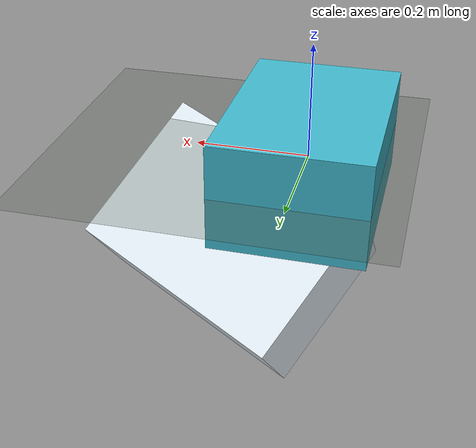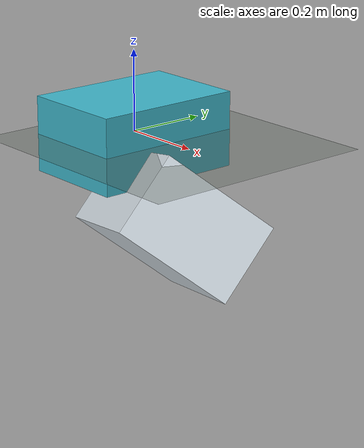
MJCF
<mujoco model="criatura">
  <compiler angle="degree" autolimits="true"/>
  <option timestep="0.002083" gravity="0 0 -9.81" integrator="implicitfast"/>
  <default>
    <geom type="box" density="300.0" rgba="0.85 0.89 0.92 1"/>
    <joint type="hinge"/>
    <motor ctrlrange="-1 1"/>
  </default>
  <worldbody>
    <geom name="suelo" type="plane" size="0 0 1" friction="1 0.005 0.0001" rgba="0.3 0.35 0.3 1"/>
    <body name="p0_n0" pos="0.00000 0.00000 0.00000" quat="1.000000 0.000000 0.000000 0.000000">
      <freejoint name="raiz"/>
      <geom name="g_p0_n0" size="0.13232 0.18854 0.09312" rgba="0.25 0.72 0.8 1"/>
      <body name="p1_n1" pos="0.13342 0.00039 -0.19666" quat="0.276211 0.802337 0.485281 -0.210869">
        <joint name="p1_n1_j0" axis="0.0000 1.0000 0.0000" pos="-0.17073 0 0" range="-68.55 68.55" damping="1.0534"/>
        <joint name="p1_n1_j1" axis="0.0000 0.0000 1.0000" pos="-0.17073 0 0" range="-68.55 68.55" damping="1.0534"/>
        <geom name="g_p1_n1" size="0.15073 0.20878 0.10312"/>
      </body>
    </body>
  </worldbody>
  <actuator>
    <motor name="m_p1_n1_j0" joint="p1_n1_j0" gear="21.0679"/>
    <motor name="m_p1_n1_j1" joint="p1_n1_j1" gear="21.0679"/>
  </actuator>
</mujoco>
